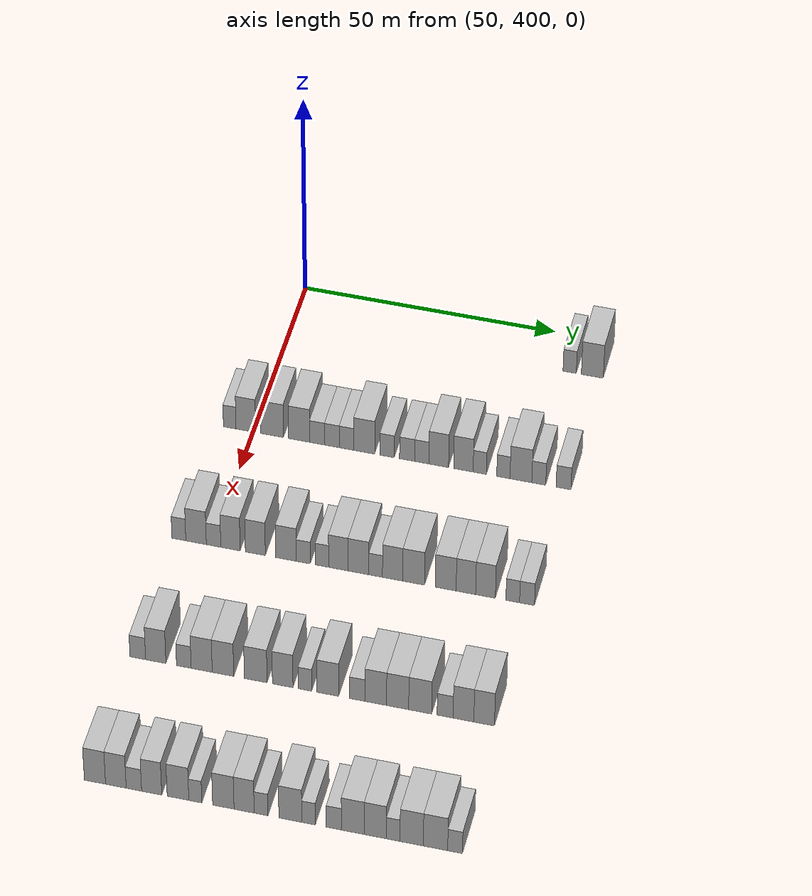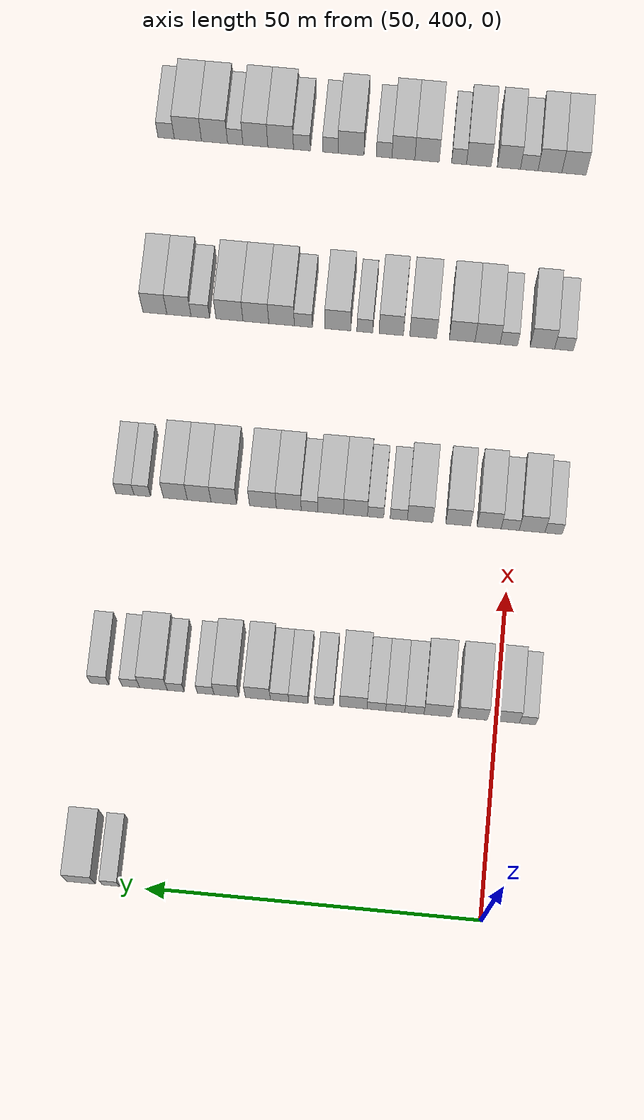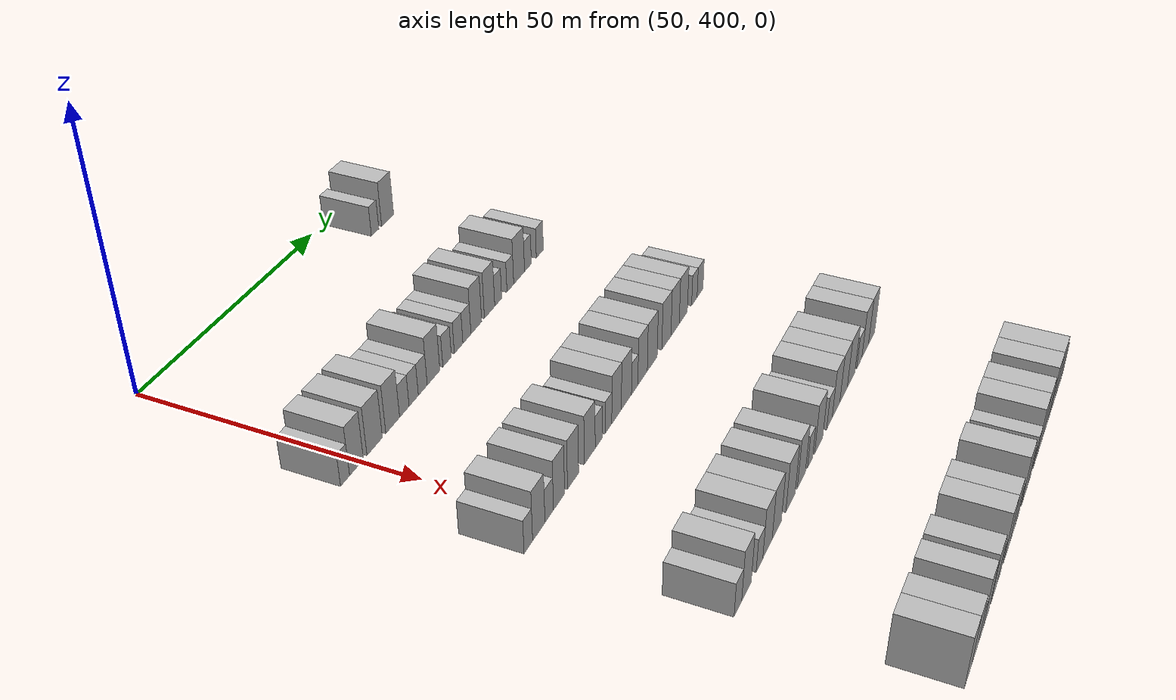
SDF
<sdf version="1.6">
 <world name="default">
  <model name="building_442">
   <static>1</static>
   <pose>55.0000 455.1010 0 0.000000 0.000000 0.000000</pose>
   <link name="link">
    <pose>0 0 3.00 0 0 0</pose>
    <collision name="collision"><geometry><box><size>10.0000 2.6158 6.0000</size></box></geometry></collision>
    <visual name="visual">
     <cast_shadows>0</cast_shadows>
     <geometry><box><size>10.0000 2.6158 6.0000</size></box></geometry>
     <material>
      <script>
       <uri>model://HANNAS_wall/materials/scripts</uri>
       <uri>model://HANNAS_wall/materials/textures</uri>
       <name>vrc/HANNAS_wall</name>
      </script>
     </material>
    </visual>
   </link>
  </model>
  <model name="building_443">
   <static>1</static>
   <pose>55.0000 459.5647 0 0.000000 0.000000 0.000000</pose>
   <link name="link">
    <pose>0 0 4.50 0 0 0</pose>
    <collision name="collision"><geometry><box><size>10.0000 4.3116 9.0000</size></box></geometry></collision>
    <visual name="visual">
     <cast_shadows>0</cast_shadows>
     <geometry><box><size>10.0000 4.3116 9.0000</size></box></geometry>
     <material>
      <script>
       <uri>model://HANNAS_wall/materials/scripts</uri>
       <uri>model://HANNAS_wall/materials/textures</uri>
       <name>vrc/HANNAS_wall</name>
      </script>
     </material>
    </visual>
   </link>
  </model>
  <model name="building_662">
   <static>1</static>
   <pose>85.0000 395.3619 0 0.000000 0.000000 0.000000</pose>
   <link name="link">
    <pose>0 0 3.00 0 0 0</pose>
    <collision name="collision"><geometry><box><size>10.0000 2.4877 6.0000</size></box></geometry></collision>
    <visual name="visual">
     <cast_shadows>0</cast_shadows>
     <geometry><box><size>10.0000 2.4877 6.0000</size></box></geometry>
     <material>
      <script>
       <uri>model://HANNAS_wall/materials/scripts</uri>
       <uri>model://HANNAS_wall/materials/textures</uri>
       <name>vrc/HANNAS_wall</name>
      </script>
     </material>
    </visual>
   </link>
  </model>
  <model name="building_663">
   <static>1</static>
   <pose>85.0000 398.5430 0 0.000000 0.000000 0.000000</pose>
   <link name="link">
    <pose>0 0 4.50 0 0 0</pose>
    <collision name="collision"><geometry><box><size>10.0000 3.8745 9.0000</size></box></geometry></collision>
    <visual name="visual">
     <cast_shadows>0</cast_shadows>
     <geometry><box><size>10.0000 3.8745 9.0000</size></box></geometry>
     <material>
      <script>
       <uri>model://HANNAS_wall/materials/scripts</uri>
       <uri>model://HANNAS_wall/materials/textures</uri>
       <name>vrc/HANNAS_wall</name>
      </script>
     </material>
    </visual>
   </link>
  </model>
  <model name="building_664">
   <static>1</static>
   <pose>85.0000 403.7124 0 0.000000 0.000000 0.000000</pose>
   <link name="link">
    <pose>0 0 4.50 0 0 0</pose>
    <collision name="collision"><geometry><box><size>10.0000 4.4644 9.0000</size></box></geometry></collision>
    <visual name="visual">
     <cast_shadows>0</cast_shadows>
     <geometry><box><size>10.0000 4.4644 9.0000</size></box></geometry>
     <material>
      <script>
       <uri>model://HANNAS_wall/materials/scripts</uri>
       <uri>model://HANNAS_wall/materials/textures</uri>
       <name>vrc/HANNAS_wall</name>
      </script>
     </material>
    </visual>
   </link>
  </model>
  <model name="building_665">
   <static>1</static>
   <pose>85.0000 409.0161 0 0.000000 0.000000 0.000000</pose>
   <link name="link">
    <pose>0 0 4.50 0 0 0</pose>
    <collision name="collision"><geometry><box><size>10.0000 4.1429 9.0000</size></box></geometry></collision>
    <visual name="visual">
     <cast_shadows>0</cast_shadows>
     <geometry><box><size>10.0000 4.1429 9.0000</size></box></geometry>
     <material>
      <script>
       <uri>model://HANNAS_wall/materials/scripts</uri>
       <uri>model://HANNAS_wall/materials/textures</uri>
       <name>vrc/HANNAS_wall</name>
      </script>
     </material>
    </visual>
   </link>
  </model>
  <model name="building_666">
   <static>1</static>
   <pose>85.0000 412.5430 0 0.000000 0.000000 0.000000</pose>
   <link name="link">
    <pose>0 0 3.00 0 0 0</pose>
    <collision name="collision"><geometry><box><size>10.0000 2.9109 6.0000</size></box></geometry></collision>
    <visual name="visual">
     <cast_shadows>0</cast_shadows>
     <geometry><box><size>10.0000 2.9109 6.0000</size></box></geometry>
     <material>
      <script>
       <uri>model://HANNAS_wall/materials/scripts</uri>
       <uri>model://HANNAS_wall/materials/textures</uri>
       <name>vrc/HANNAS_wall</name>
      </script>
     </material>
    </visual>
   </link>
  </model>
  <model name="building_667">
   <static>1</static>
   <pose>85.0000 415.4427 0 0.000000 0.000000 0.000000</pose>
   <link name="link">
    <pose>0 0 3.00 0 0 0</pose>
    <collision name="collision"><geometry><box><size>10.0000 2.8886 6.0000</size></box></geometry></collision>
    <visual name="visual">
     <cast_shadows>0</cast_shadows>
     <geometry><box><size>10.0000 2.8886 6.0000</size></box></geometry>
     <material>
      <script>
       <uri>model://HANNAS_wall/materials/scripts</uri>
       <uri>model://HANNAS_wall/materials/textures</uri>
       <name>vrc/HANNAS_wall</name>
      </script>
     </material>
    </visual>
   </link>
  </model>
  <model name="building_668">
   <static>1</static>
   <pose>85.0000 418.3026 0 0.000000 0.000000 0.000000</pose>
   <link name="link">
    <pose>0 0 3.00 0 0 0</pose>
    <collision name="collision"><geometry><box><size>10.0000 2.8311 6.0000</size></box></geometry></collision>
    <visual name="visual">
     <cast_shadows>0</cast_shadows>
     <geometry><box><size>10.0000 2.8311 6.0000</size></box></geometry>
     <material>
      <script>
       <uri>model://HANNAS_wall/materials/scripts</uri>
       <uri>model://HANNAS_wall/materials/textures</uri>
       <name>vrc/HANNAS_wall</name>
      </script>
     </material>
    </visual>
   </link>
  </model>
  <model name="building_669">
   <static>1</static>
   <pose>85.0000 421.7716 0 0.000000 0.000000 0.000000</pose>
   <link name="link">
    <pose>0 0 4.50 0 0 0</pose>
    <collision name="collision"><geometry><box><size>10.0000 4.1070 9.0000</size></box></geometry></collision>
    <visual name="visual">
     <cast_shadows>0</cast_shadows>
     <geometry><box><size>10.0000 4.1070 9.0000</size></box></geometry>
     <material>
      <script>
       <uri>model://HANNAS_wall/materials/scripts</uri>
       <uri>model://HANNAS_wall/materials/textures</uri>
       <name>vrc/HANNAS_wall</name>
      </script>
     </material>
    </visual>
   </link>
  </model>
  <model name="building_670">
   <static>1</static>
   <pose>85.0000 426.2476 0 0.000000 0.000000 0.000000</pose>
   <link name="link">
    <pose>0 0 3.00 0 0 0</pose>
    <collision name="collision"><geometry><box><size>10.0000 2.8450 6.0000</size></box></geometry></collision>
    <visual name="visual">
     <cast_shadows>0</cast_shadows>
     <geometry><box><size>10.0000 2.8450 6.0000</size></box></geometry>
     <material>
      <script>
       <uri>model://HANNAS_wall/materials/scripts</uri>
       <uri>model://HANNAS_wall/materials/textures</uri>
       <name>vrc/HANNAS_wall</name>
      </script>
     </material>
    </visual>
   </link>
  </model>
  <model name="building_671">
   <static>1</static>
   <pose>85.0000 430.1347 0 0.000000 0.000000 0.000000</pose>
   <link name="link">
    <pose>0 0 3.00 0 0 0</pose>
    <collision name="collision"><geometry><box><size>10.0000 2.9293 6.0000</size></box></geometry></collision>
    <visual name="visual">
     <cast_shadows>0</cast_shadows>
     <geometry><box><size>10.0000 2.9293 6.0000</size></box></geometry>
     <material>
      <script>
       <uri>model://HANNAS_wall/materials/scripts</uri>
       <uri>model://HANNAS_wall/materials/textures</uri>
       <name>vrc/HANNAS_wall</name>
      </script>
     </material>
    </visual>
   </link>
  </model>
  <model name="building_672">
   <static>1</static>
   <pose>85.0000 432.9992 0 0.000000 0.000000 0.000000</pose>
   <link name="link">
    <pose>0 0 3.00 0 0 0</pose>
    <collision name="collision"><geometry><box><size>10.0000 2.7996 6.0000</size></box></geometry></collision>
    <visual name="visual">
     <cast_shadows>0</cast_shadows>
     <geometry><box><size>10.0000 2.7996 6.0000</size></box></geometry>
     <material>
      <script>
       <uri>model://HANNAS_wall/materials/scripts</uri>
       <uri>model://HANNAS_wall/materials/textures</uri>
       <name>vrc/HANNAS_wall</name>
      </script>
     </material>
    </visual>
   </link>
  </model>
  <model name="building_673">
   <static>1</static>
   <pose>85.0000 436.3059 0 0.000000 0.000000 0.000000</pose>
   <link name="link">
    <pose>0 0 4.50 0 0 0</pose>
    <collision name="collision"><geometry><box><size>10.0000 3.8138 9.0000</size></box></geometry></collision>
    <visual name="visual">
     <cast_shadows>0</cast_shadows>
     <geometry><box><size>10.0000 3.8138 9.0000</size></box></geometry>
     <material>
      <script>
       <uri>model://HANNAS_wall/materials/scripts</uri>
       <uri>model://HANNAS_wall/materials/textures</uri>
       <name>vrc/HANNAS_wall</name>
      </script>
     </material>
    </visual>
   </link>
  </model>
  <model name="building_674">
   <static>1</static>
   <pose>85.0000 441.1035 0 0.000000 0.000000 0.000000</pose>
   <link name="link">
    <pose>0 0 4.50 0 0 0</pose>
    <collision name="collision"><geometry><box><size>10.0000 3.7814 9.0000</size></box></geometry></collision>
    <visual name="visual">
     <cast_shadows>0</cast_shadows>
     <geometry><box><size>10.0000 3.7814 9.0000</size></box></geometry>
     <material>
      <script>
       <uri>model://HANNAS_wall/materials/scripts</uri>
       <uri>model://HANNAS_wall/materials/textures</uri>
       <name>vrc/HANNAS_wall</name>
      </script>
     </material>
    </visual>
   </link>
  </model>
  <model name="building_675">
   <static>1</static>
   <pose>85.0000 444.2789 0 0.000000 0.000000 0.000000</pose>
   <link name="link">
    <pose>0 0 3.00 0 0 0</pose>
    <collision name="collision"><geometry><box><size>10.0000 2.5695 6.0000</size></box></geometry></collision>
    <visual name="visual">
     <cast_shadows>0</cast_shadows>
     <geometry><box><size>10.0000 2.5695 6.0000</size></box></geometry>
     <material>
      <script>
       <uri>model://HANNAS_wall/materials/scripts</uri>
       <uri>model://HANNAS_wall/materials/textures</uri>
       <name>vrc/HANNAS_wall</name>
      </script>
     </material>
    </visual>
   </link>
  </model>
  <model name="building_676">
   <static>1</static>
   <pose>85.0000 448.8478 0 0.000000 0.000000 0.000000</pose>
   <link name="link">
    <pose>0 0 3.00 0 0 0</pose>
    <collision name="collision"><geometry><box><size>10.0000 2.5683 6.0000</size></box></geometry></collision>
    <visual name="visual">
     <cast_shadows>0</cast_shadows>
     <geometry><box><size>10.0000 2.5683 6.0000</size></box></geometry>
     <material>
      <script>
       <uri>model://HANNAS_wall/materials/scripts</uri>
       <uri>model://HANNAS_wall/materials/textures</uri>
       <name>vrc/HANNAS_wall</name>
      </script>
     </material>
    </visual>
   </link>
  </model>
  <model name="building_677">
   <static>1</static>
   <pose>85.0000 452.2426 0 0.000000 0.000000 0.000000</pose>
   <link name="link">
    <pose>0 0 4.50 0 0 0</pose>
    <collision name="collision"><geometry><box><size>10.0000 4.2213 9.0000</size></box></geometry></collision>
    <visual name="visual">
     <cast_shadows>0</cast_shadows>
     <geometry><box><size>10.0000 4.2213 9.0000</size></box></geometry>
     <material>
      <script>
       <uri>model://HANNAS_wall/materials/scripts</uri>
       <uri>model://HANNAS_wall/materials/textures</uri>
       <name>vrc/HANNAS_wall</name>
      </script>
     </material>
    </visual>
   </link>
  </model>
  <model name="building_678">
   <static>1</static>
   <pose>85.0000 455.6998 0 0.000000 0.000000 0.000000</pose>
   <link name="link">
    <pose>0 0 3.00 0 0 0</pose>
    <collision name="collision"><geometry><box><size>10.0000 2.6931 6.0000</size></box></geometry></collision>
    <visual name="visual">
     <cast_shadows>0</cast_shadows>
     <geometry><box><size>10.0000 2.6931 6.0000</size></box></geometry>
     <material>
      <script>
       <uri>model://HANNAS_wall/materials/scripts</uri>
       <uri>model://HANNAS_wall/materials/textures</uri>
       <name>vrc/HANNAS_wall</name>
      </script>
     </material>
    </visual>
   </link>
  </model>
  <model name="building_679">
   <static>1</static>
   <pose>85.0000 460.4785 0 0.000000 0.000000 0.000000</pose>
   <link name="link">
    <pose>0 0 3.00 0 0 0</pose>
    <collision name="collision"><geometry><box><size>10.0000 2.8643 6.0000</size></box></geometry></collision>
    <visual name="visual">
     <cast_shadows>0</cast_shadows>
     <geometry><box><size>10.0000 2.8643 6.0000</size></box></geometry>
     <material>
      <script>
       <uri>model://HANNAS_wall/materials/scripts</uri>
       <uri>model://HANNAS_wall/materials/textures</uri>
       <name>vrc/HANNAS_wall</name>
      </script>
     </material>
    </visual>
   </link>
  </model>
  <model name="building_889">
   <static>1</static>
   <pose>115.0000 393.5553 0 0.000000 0.000000 0.000000</pose>
   <link name="link">
    <pose>0 0 3.00 0 0 0</pose>
    <collision name="collision"><geometry><box><size>10.0000 2.6871 6.0000</size></box></geometry></collision>
    <visual name="visual">
     <cast_shadows>0</cast_shadows>
     <geometry><box><size>10.0000 2.6871 6.0000</size></box></geometry>
     <material>
      <script>
       <uri>model://HANNAS_wall/materials/scripts</uri>
       <uri>model://HANNAS_wall/materials/textures</uri>
       <name>vrc/HANNAS_wall</name>
      </script>
     </material>
    </visual>
   </link>
  </model>
  <model name="building_890">
   <static>1</static>
   <pose>115.0000 396.8811 0 0.000000 0.000000 0.000000</pose>
   <link name="link">
    <pose>0 0 4.50 0 0 0</pose>
    <collision name="collision"><geometry><box><size>10.0000 3.9644 9.0000</size></box></geometry></collision>
    <visual name="visual">
     <cast_shadows>0</cast_shadows>
     <geometry><box><size>10.0000 3.9644 9.0000</size></box></geometry>
     <material>
      <script>
       <uri>model://HANNAS_wall/materials/scripts</uri>
       <uri>model://HANNAS_wall/materials/textures</uri>
       <name>vrc/HANNAS_wall</name>
      </script>
     </material>
    </visual>
   </link>
  </model>
  <model name="building_891">
   <static>1</static>
   <pose>115.0000 400.2628 0 0.000000 0.000000 0.000000</pose>
   <link name="link">
    <pose>0 0 3.00 0 0 0</pose>
    <collision name="collision"><geometry><box><size>10.0000 2.7990 6.0000</size></box></geometry></collision>
    <visual name="visual">
     <cast_shadows>0</cast_shadows>
     <geometry><box><size>10.0000 2.7990 6.0000</size></box></geometry>
     <material>
      <script>
       <uri>model://HANNAS_wall/materials/scripts</uri>
       <uri>model://HANNAS_wall/materials/textures</uri>
       <name>vrc/HANNAS_wall</name>
      </script>
     </material>
    </visual>
   </link>
  </model>
  <model name="building_892">
   <static>1</static>
   <pose>115.0000 403.5293 0 0.000000 0.000000 0.000000</pose>
   <link name="link">
    <pose>0 0 4.50 0 0 0</pose>
    <collision name="collision"><geometry><box><size>10.0000 3.7340 9.0000</size></box></geometry></collision>
    <visual name="visual">
     <cast_shadows>0</cast_shadows>
     <geometry><box><size>10.0000 3.7340 9.0000</size></box></geometry>
     <material>
      <script>
       <uri>model://HANNAS_wall/materials/scripts</uri>
       <uri>model://HANNAS_wall/materials/textures</uri>
       <name>vrc/HANNAS_wall</name>
      </script>
     </material>
    </visual>
   </link>
  </model>
  <model name="building_893">
   <static>1</static>
   <pose>115.0000 408.3250 0 0.000000 0.000000 0.000000</pose>
   <link name="link">
    <pose>0 0 4.50 0 0 0</pose>
    <collision name="collision"><geometry><box><size>10.0000 3.8573 9.0000</size></box></geometry></collision>
    <visual name="visual">
     <cast_shadows>0</cast_shadows>
     <geometry><box><size>10.0000 3.8573 9.0000</size></box></geometry>
     <material>
      <script>
       <uri>model://HANNAS_wall/materials/scripts</uri>
       <uri>model://HANNAS_wall/materials/textures</uri>
       <name>vrc/HANNAS_wall</name>
      </script>
     </material>
    </visual>
   </link>
  </model>
  <model name="building_894">
   <static>1</static>
   <pose>115.0000 414.2347 0 0.000000 0.000000 0.000000</pose>
   <link name="link">
    <pose>0 0 4.50 0 0 0</pose>
    <collision name="collision"><geometry><box><size>10.0000 3.9620 9.0000</size></box></geometry></collision>
    <visual name="visual">
     <cast_shadows>0</cast_shadows>
     <geometry><box><size>10.0000 3.9620 9.0000</size></box></geometry>
     <material>
      <script>
       <uri>model://HANNAS_wall/materials/scripts</uri>
       <uri>model://HANNAS_wall/materials/textures</uri>
       <name>vrc/HANNAS_wall</name>
      </script>
     </material>
    </visual>
   </link>
  </model>
  <model name="building_895">
   <static>1</static>
   <pose>115.0000 417.5488 0 0.000000 0.000000 0.000000</pose>
   <link name="link">
    <pose>0 0 3.00 0 0 0</pose>
    <collision name="collision"><geometry><box><size>10.0000 2.6662 6.0000</size></box></geometry></collision>
    <visual name="visual">
     <cast_shadows>0</cast_shadows>
     <geometry><box><size>10.0000 2.6662 6.0000</size></box></geometry>
     <material>
      <script>
       <uri>model://HANNAS_wall/materials/scripts</uri>
       <uri>model://HANNAS_wall/materials/textures</uri>
       <name>vrc/HANNAS_wall</name>
      </script>
     </material>
    </visual>
   </link>
  </model>
  <model name="building_896">
   <static>1</static>
   <pose>115.0000 421.1404 0 0.000000 0.000000 0.000000</pose>
   <link name="link">
    <pose>0 0 3.00 0 0 0</pose>
    <collision name="collision"><geometry><box><size>10.0000 2.5169 6.0000</size></box></geometry></collision>
    <visual name="visual">
     <cast_shadows>0</cast_shadows>
     <geometry><box><size>10.0000 2.5169 6.0000</size></box></geometry>
     <material>
      <script>
       <uri>model://HANNAS_wall/materials/scripts</uri>
       <uri>model://HANNAS_wall/materials/textures</uri>
       <name>vrc/HANNAS_wall</name>
      </script>
     </material>
    </visual>
   </link>
  </model>
  <model name="building_897">
   <static>1</static>
   <pose>115.0000 424.2608 0 0.000000 0.000000 0.000000</pose>
   <link name="link">
    <pose>0 0 4.50 0 0 0</pose>
    <collision name="collision"><geometry><box><size>10.0000 3.7238 9.0000</size></box></geometry></collision>
    <visual name="visual">
     <cast_shadows>0</cast_shadows>
     <geometry><box><size>10.0000 3.7238 9.0000</size></box></geometry>
     <material>
      <script>
       <uri>model://HANNAS_wall/materials/scripts</uri>
       <uri>model://HANNAS_wall/materials/textures</uri>
       <name>vrc/HANNAS_wall</name>
      </script>
     </material>
    </visual>
   </link>
  </model>
  <model name="building_898">
   <static>1</static>
   <pose>115.0000 428.1082 0 0.000000 0.000000 0.000000</pose>
   <link name="link">
    <pose>0 0 4.50 0 0 0</pose>
    <collision name="collision"><geometry><box><size>10.0000 3.9711 9.0000</size></box></geometry></collision>
    <visual name="visual">
     <cast_shadows>0</cast_shadows>
     <geometry><box><size>10.0000 3.9711 9.0000</size></box></geometry>
     <material>
      <script>
       <uri>model://HANNAS_wall/materials/scripts</uri>
       <uri>model://HANNAS_wall/materials/textures</uri>
       <name>vrc/HANNAS_wall</name>
      </script>
     </material>
    </visual>
   </link>
  </model>
  <model name="building_899">
   <static>1</static>
   <pose>115.0000 431.3966 0 0.000000 0.000000 0.000000</pose>
   <link name="link">
    <pose>0 0 3.00 0 0 0</pose>
    <collision name="collision"><geometry><box><size>10.0000 2.6055 6.0000</size></box></geometry></collision>
    <visual name="visual">
     <cast_shadows>0</cast_shadows>
     <geometry><box><size>10.0000 2.6055 6.0000</size></box></geometry>
     <material>
      <script>
       <uri>model://HANNAS_wall/materials/scripts</uri>
       <uri>model://HANNAS_wall/materials/textures</uri>
       <name>vrc/HANNAS_wall</name>
      </script>
     </material>
    </visual>
   </link>
  </model>
  <model name="building_900">
   <static>1</static>
   <pose>115.0000 434.6352 0 0.000000 0.000000 0.000000</pose>
   <link name="link">
    <pose>0 0 4.50 0 0 0</pose>
    <collision name="collision"><geometry><box><size>10.0000 3.8718 9.0000</size></box></geometry></collision>
    <visual name="visual">
     <cast_shadows>0</cast_shadows>
     <geometry><box><size>10.0000 3.8718 9.0000</size></box></geometry>
     <material>
      <script>
       <uri>model://HANNAS_wall/materials/scripts</uri>
       <uri>model://HANNAS_wall/materials/textures</uri>
       <name>vrc/HANNAS_wall</name>
      </script>
     </material>
    </visual>
   </link>
  </model>
  <model name="building_901">
   <static>1</static>
   <pose>115.0000 438.6558 0 0.000000 0.000000 0.000000</pose>
   <link name="link">
    <pose>0 0 4.50 0 0 0</pose>
    <collision name="collision"><geometry><box><size>10.0000 4.1694 9.0000</size></box></geometry></collision>
    <visual name="visual">
     <cast_shadows>0</cast_shadows>
     <geometry><box><size>10.0000 4.1694 9.0000</size></box></geometry>
     <material>
      <script>
       <uri>model://HANNAS_wall/materials/scripts</uri>
       <uri>model://HANNAS_wall/materials/textures</uri>
       <name>vrc/HANNAS_wall</name>
      </script>
     </material>
    </visual>
   </link>
  </model>
  <model name="building_902">
   <static>1</static>
   <pose>115.0000 444.7355 0 0.000000 0.000000 0.000000</pose>
   <link name="link">
    <pose>0 0 4.50 0 0 0</pose>
    <collision name="collision"><geometry><box><size>10.0000 3.9899 9.0000</size></box></geometry></collision>
    <visual name="visual">
     <cast_shadows>0</cast_shadows>
     <geometry><box><size>10.0000 3.9899 9.0000</size></box></geometry>
     <material>
      <script>
       <uri>model://HANNAS_wall/materials/scripts</uri>
       <uri>model://HANNAS_wall/materials/textures</uri>
       <name>vrc/HANNAS_wall</name>
      </script>
     </material>
    </visual>
   </link>
  </model>
  <model name="building_903">
   <static>1</static>
   <pose>115.0000 448.5829 0 0.000000 0.000000 0.000000</pose>
   <link name="link">
    <pose>0 0 4.50 0 0 0</pose>
    <collision name="collision"><geometry><box><size>10.0000 3.7051 9.0000</size></box></geometry></collision>
    <visual name="visual">
     <cast_shadows>0</cast_shadows>
     <geometry><box><size>10.0000 3.7051 9.0000</size></box></geometry>
     <material>
      <script>
       <uri>model://HANNAS_wall/materials/scripts</uri>
       <uri>model://HANNAS_wall/materials/textures</uri>
       <name>vrc/HANNAS_wall</name>
      </script>
     </material>
    </visual>
   </link>
  </model>
  <model name="building_904">
   <static>1</static>
   <pose>115.0000 452.3053 0 0.000000 0.000000 0.000000</pose>
   <link name="link">
    <pose>0 0 4.50 0 0 0</pose>
    <collision name="collision"><geometry><box><size>10.0000 3.7396 9.0000</size></box></geometry></collision>
    <visual name="visual">
     <cast_shadows>0</cast_shadows>
     <geometry><box><size>10.0000 3.7396 9.0000</size></box></geometry>
     <material>
      <script>
       <uri>model://HANNAS_wall/materials/scripts</uri>
       <uri>model://HANNAS_wall/materials/textures</uri>
       <name>vrc/HANNAS_wall</name>
      </script>
     </material>
    </visual>
   </link>
  </model>
  <model name="building_905">
   <static>1</static>
   <pose>115.0000 457.4669 0 0.000000 0.000000 0.000000</pose>
   <link name="link">
    <pose>0 0 3.00 0 0 0</pose>
    <collision name="collision"><geometry><box><size>10.0000 2.5836 6.0000</size></box></geometry></collision>
    <visual name="visual">
     <cast_shadows>0</cast_shadows>
     <geometry><box><size>10.0000 2.5836 6.0000</size></box></geometry>
     <material>
      <script>
       <uri>model://HANNAS_wall/materials/scripts</uri>
       <uri>model://HANNAS_wall/materials/textures</uri>
       <name>vrc/HANNAS_wall</name>
      </script>
     </material>
    </visual>
   </link>
  </model>
  <model name="building_906">
   <static>1</static>
   <pose>115.0000 460.1709 0 0.000000 0.000000 0.000000</pose>
   <link name="link">
    <pose>0 0 3.00 0 0 0</pose>
    <collision name="collision"><geometry><box><size>10.0000 2.8246 6.0000</size></box></geometry></collision>
    <visual name="visual">
     <cast_shadows>0</cast_shadows>
     <geometry><box><size>10.0000 2.8246 6.0000</size></box></geometry>
     <material>
      <script>
       <uri>model://HANNAS_wall/materials/scripts</uri>
       <uri>model://HANNAS_wall/materials/textures</uri>
       <name>vrc/HANNAS_wall</name>
      </script>
     </material>
    </visual>
   </link>
  </model>
  <model name="building_1117">
   <static>1</static>
   <pose>145.0000 394.0140 0 0.000000 0.000000 0.000000</pose>
   <link name="link">
    <pose>0 0 3.00 0 0 0</pose>
    <collision name="collision"><geometry><box><size>10.0000 2.9625 6.0000</size></box></geometry></collision>
    <visual name="visual">
     <cast_shadows>0</cast_shadows>
     <geometry><box><size>10.0000 2.9625 6.0000</size></box></geometry>
     <material>
      <script>
       <uri>model://HANNAS_wall/materials/scripts</uri>
       <uri>model://HANNAS_wall/materials/textures</uri>
       <name>vrc/HANNAS_wall</name>
      </script>
     </material>
    </visual>
   </link>
  </model>
  <model name="building_1118">
   <static>1</static>
   <pose>145.0000 397.4213 0 0.000000 0.000000 0.000000</pose>
   <link name="link">
    <pose>0 0 4.50 0 0 0</pose>
    <collision name="collision"><geometry><box><size>10.0000 3.8521 9.0000</size></box></geometry></collision>
    <visual name="visual">
     <cast_shadows>0</cast_shadows>
     <geometry><box><size>10.0000 3.8521 9.0000</size></box></geometry>
     <material>
      <script>
       <uri>model://HANNAS_wall/materials/scripts</uri>
       <uri>model://HANNAS_wall/materials/textures</uri>
       <name>vrc/HANNAS_wall</name>
      </script>
     </material>
    </visual>
   </link>
  </model>
  <model name="building_1119">
   <static>1</static>
   <pose>145.0000 402.7347 0 0.000000 0.000000 0.000000</pose>
   <link name="link">
    <pose>0 0 3.00 0 0 0</pose>
    <collision name="collision"><geometry><box><size>10.0000 2.7748 6.0000</size></box></geometry></collision>
    <visual name="visual">
     <cast_shadows>0</cast_shadows>
     <geometry><box><size>10.0000 2.7748 6.0000</size></box></geometry>
     <material>
      <script>
       <uri>model://HANNAS_wall/materials/scripts</uri>
       <uri>model://HANNAS_wall/materials/textures</uri>
       <name>vrc/HANNAS_wall</name>
      </script>
     </material>
    </visual>
   </link>
  </model>
  <model name="building_1120">
   <static>1</static>
   <pose>145.0000 406.1104 0 0.000000 0.000000 0.000000</pose>
   <link name="link">
    <pose>0 0 4.50 0 0 0</pose>
    <collision name="collision"><geometry><box><size>10.0000 3.9766 9.0000</size></box></geometry></collision>
    <visual name="visual">
     <cast_shadows>0</cast_shadows>
     <geometry><box><size>10.0000 3.9766 9.0000</size></box></geometry>
     <material>
      <script>
       <uri>model://HANNAS_wall/materials/scripts</uri>
       <uri>model://HANNAS_wall/materials/textures</uri>
       <name>vrc/HANNAS_wall</name>
      </script>
     </material>
    </visual>
   </link>
  </model>
  <model name="building_1121">
   <static>1</static>
   <pose>145.0000 410.1350 0 0.000000 0.000000 0.000000</pose>
   <link name="link">
    <pose>0 0 4.50 0 0 0</pose>
    <collision name="collision"><geometry><box><size>10.0000 4.0726 9.0000</size></box></geometry></collision>
    <visual name="visual">
     <cast_shadows>0</cast_shadows>
     <geometry><box><size>10.0000 4.0726 9.0000</size></box></geometry>
     <material>
      <script>
       <uri>model://HANNAS_wall/materials/scripts</uri>
       <uri>model://HANNAS_wall/materials/textures</uri>
       <name>vrc/HANNAS_wall</name>
      </script>
     </material>
    </visual>
   </link>
  </model>
  <model name="building_1122">
   <static>1</static>
   <pose>145.0000 416.3068 0 0.000000 0.000000 0.000000</pose>
   <link name="link">
    <pose>0 0 4.50 0 0 0</pose>
    <collision name="collision"><geometry><box><size>10.0000 4.2710 9.0000</size></box></geometry></collision>
    <visual name="visual">
     <cast_shadows>0</cast_shadows>
     <geometry><box><size>10.0000 4.2710 9.0000</size></box></geometry>
     <material>
      <script>
       <uri>model://HANNAS_wall/materials/scripts</uri>
       <uri>model://HANNAS_wall/materials/textures</uri>
       <name>vrc/HANNAS_wall</name>
      </script>
     </material>
    </visual>
   </link>
  </model>
  <model name="building_1123">
   <static>1</static>
   <pose>145.0000 421.3751 0 0.000000 0.000000 0.000000</pose>
   <link name="link">
    <pose>0 0 4.50 0 0 0</pose>
    <collision name="collision"><geometry><box><size>10.0000 3.8656 9.0000</size></box></geometry></collision>
    <visual name="visual">
     <cast_shadows>0</cast_shadows>
     <geometry><box><size>10.0000 3.8656 9.0000</size></box></geometry>
     <material>
      <script>
       <uri>model://HANNAS_wall/materials/scripts</uri>
       <uri>model://HANNAS_wall/materials/textures</uri>
       <name>vrc/HANNAS_wall</name>
      </script>
     </material>
    </visual>
   </link>
  </model>
  <model name="building_1124">
   <static>1</static>
   <pose>145.0000 425.5668 0 0.000000 0.000000 0.000000</pose>
   <link name="link">
    <pose>0 0 3.00 0 0 0</pose>
    <collision name="collision"><geometry><box><size>10.0000 2.5178 6.0000</size></box></geometry></collision>
    <visual name="visual">
     <cast_shadows>0</cast_shadows>
     <geometry><box><size>10.0000 2.5178 6.0000</size></box></geometry>
     <material>
      <script>
       <uri>model://HANNAS_wall/materials/scripts</uri>
       <uri>model://HANNAS_wall/materials/textures</uri>
       <name>vrc/HANNAS_wall</name>
      </script>
     </material>
    </visual>
   </link>
  </model>
  <model name="building_1125">
   <static>1</static>
   <pose>145.0000 429.8598 0 0.000000 0.000000 0.000000</pose>
   <link name="link">
    <pose>0 0 4.50 0 0 0</pose>
    <collision name="collision"><geometry><box><size>10.0000 4.0683 9.0000</size></box></geometry></collision>
    <visual name="visual">
     <cast_shadows>0</cast_shadows>
     <geometry><box><size>10.0000 4.0683 9.0000</size></box></geometry>
     <material>
      <script>
       <uri>model://HANNAS_wall/materials/scripts</uri>
       <uri>model://HANNAS_wall/materials/textures</uri>
       <name>vrc/HANNAS_wall</name>
      </script>
     </material>
    </visual>
   </link>
  </model>
  <model name="building_1126">
   <static>1</static>
   <pose>145.0000 435.3322 0 0.000000 0.000000 0.000000</pose>
   <link name="link">
    <pose>0 0 3.00 0 0 0</pose>
    <collision name="collision"><geometry><box><size>10.0000 2.8766 6.0000</size></box></geometry></collision>
    <visual name="visual">
     <cast_shadows>0</cast_shadows>
     <geometry><box><size>10.0000 2.8766 6.0000</size></box></geometry>
     <material>
      <script>
       <uri>model://HANNAS_wall/materials/scripts</uri>
       <uri>model://HANNAS_wall/materials/textures</uri>
       <name>vrc/HANNAS_wall</name>
      </script>
     </material>
    </visual>
   </link>
  </model>
  <model name="building_1127">
   <static>1</static>
   <pose>145.0000 438.8032 0 0.000000 0.000000 0.000000</pose>
   <link name="link">
    <pose>0 0 4.50 0 0 0</pose>
    <collision name="collision"><geometry><box><size>10.0000 4.0653 9.0000</size></box></geometry></collision>
    <visual name="visual">
     <cast_shadows>0</cast_shadows>
     <geometry><box><size>10.0000 4.0653 9.0000</size></box></geometry>
     <material>
      <script>
       <uri>model://HANNAS_wall/materials/scripts</uri>
       <uri>model://HANNAS_wall/materials/textures</uri>
       <name>vrc/HANNAS_wall</name>
      </script>
     </material>
    </visual>
   </link>
  </model>
  <model name="building_1128">
   <static>1</static>
   <pose>145.0000 442.8926 0 0.000000 0.000000 0.000000</pose>
   <link name="link">
    <pose>0 0 4.50 0 0 0</pose>
    <collision name="collision"><geometry><box><size>10.0000 4.1135 9.0000</size></box></geometry></collision>
    <visual name="visual">
     <cast_shadows>0</cast_shadows>
     <geometry><box><size>10.0000 4.1135 9.0000</size></box></geometry>
     <material>
      <script>
       <uri>model://HANNAS_wall/materials/scripts</uri>
       <uri>model://HANNAS_wall/materials/textures</uri>
       <name>vrc/HANNAS_wall</name>
      </script>
     </material>
    </visual>
   </link>
  </model>
  <model name="building_1129">
   <static>1</static>
   <pose>145.0000 447.0960 0 0.000000 0.000000 0.000000</pose>
   <link name="link">
    <pose>0 0 4.50 0 0 0</pose>
    <collision name="collision"><geometry><box><size>10.0000 4.2934 9.0000</size></box></geometry></collision>
    <visual name="visual">
     <cast_shadows>0</cast_shadows>
     <geometry><box><size>10.0000 4.2934 9.0000</size></box></geometry>
     <material>
      <script>
       <uri>model://HANNAS_wall/materials/scripts</uri>
       <uri>model://HANNAS_wall/materials/textures</uri>
       <name>vrc/HANNAS_wall</name>
      </script>
     </material>
    </visual>
   </link>
  </model>
  <model name="building_1130">
   <static>1</static>
   <pose>145.0000 451.7294 0 0.000000 0.000000 0.000000</pose>
   <link name="link">
    <pose>0 0 3.00 0 0 0</pose>
    <collision name="collision"><geometry><box><size>10.0000 2.9734 6.0000</size></box></geometry></collision>
    <visual name="visual">
     <cast_shadows>0</cast_shadows>
     <geometry><box><size>10.0000 2.9734 6.0000</size></box></geometry>
     <material>
      <script>
       <uri>model://HANNAS_wall/materials/scripts</uri>
       <uri>model://HANNAS_wall/materials/textures</uri>
       <name>vrc/HANNAS_wall</name>
      </script>
     </material>
    </visual>
   </link>
  </model>
  <model name="building_1131">
   <static>1</static>
   <pose>145.0000 455.1418 0 0.000000 0.000000 0.000000</pose>
   <link name="link">
    <pose>0 0 4.50 0 0 0</pose>
    <collision name="collision"><geometry><box><size>10.0000 3.8513 9.0000</size></box></geometry></collision>
    <visual name="visual">
     <cast_shadows>0</cast_shadows>
     <geometry><box><size>10.0000 3.8513 9.0000</size></box></geometry>
     <material>
      <script>
       <uri>model://HANNAS_wall/materials/scripts</uri>
       <uri>model://HANNAS_wall/materials/textures</uri>
       <name>vrc/HANNAS_wall</name>
      </script>
     </material>
    </visual>
   </link>
  </model>
  <model name="building_1132">
   <static>1</static>
   <pose>145.0000 458.9779 0 0.000000 0.000000 0.000000</pose>
   <link name="link">
    <pose>0 0 4.50 0 0 0</pose>
    <collision name="collision"><geometry><box><size>10.0000 3.8211 9.0000</size></box></geometry></collision>
    <visual name="visual">
     <cast_shadows>0</cast_shadows>
     <geometry><box><size>10.0000 3.8211 9.0000</size></box></geometry>
     <material>
      <script>
       <uri>model://HANNAS_wall/materials/scripts</uri>
       <uri>model://HANNAS_wall/materials/textures</uri>
       <name>vrc/HANNAS_wall</name>
      </script>
     </material>
    </visual>
   </link>
  </model>
  <model name="building_1351">
   <static>1</static>
   <pose>175.0000 394.4830 0 0.000000 0.000000 0.000000</pose>
   <link name="link">
    <pose>0 0 4.50 0 0 0</pose>
    <collision name="collision"><geometry><box><size>10.0000 3.9246 9.0000</size></box></geometry></collision>
    <visual name="visual">
     <cast_shadows>0</cast_shadows>
     <geometry><box><size>10.0000 3.9246 9.0000</size></box></geometry>
     <material>
      <script>
       <uri>model://HANNAS_wall/materials/scripts</uri>
       <uri>model://HANNAS_wall/materials/textures</uri>
       <name>vrc/HANNAS_wall</name>
      </script>
     </material>
    </visual>
   </link>
  </model>
  <model name="building_1352">
   <static>1</static>
   <pose>175.0000 398.3618 0 0.000000 0.000000 0.000000</pose>
   <link name="link">
    <pose>0 0 4.50 0 0 0</pose>
    <collision name="collision"><geometry><box><size>10.0000 3.8331 9.0000</size></box></geometry></collision>
    <visual name="visual">
     <cast_shadows>0</cast_shadows>
     <geometry><box><size>10.0000 3.8331 9.0000</size></box></geometry>
     <material>
      <script>
       <uri>model://HANNAS_wall/materials/scripts</uri>
       <uri>model://HANNAS_wall/materials/textures</uri>
       <name>vrc/HANNAS_wall</name>
      </script>
     </material>
    </visual>
   </link>
  </model>
  <model name="building_1353">
   <static>1</static>
   <pose>175.0000 401.7076 0 0.000000 0.000000 0.000000</pose>
   <link name="link">
    <pose>0 0 3.00 0 0 0</pose>
    <collision name="collision"><geometry><box><size>10.0000 2.8585 6.0000</size></box></geometry></collision>
    <visual name="visual">
     <cast_shadows>0</cast_shadows>
     <geometry><box><size>10.0000 2.8585 6.0000</size></box></geometry>
     <material>
      <script>
       <uri>model://HANNAS_wall/materials/scripts</uri>
       <uri>model://HANNAS_wall/materials/textures</uri>
       <name>vrc/HANNAS_wall</name>
      </script>
     </material>
    </visual>
   </link>
  </model>
  <model name="building_1354">
   <static>1</static>
   <pose>175.0000 405.0054 0 0.000000 0.000000 0.000000</pose>
   <link name="link">
    <pose>0 0 4.50 0 0 0</pose>
    <collision name="collision"><geometry><box><size>10.0000 3.7371 9.0000</size></box></geometry></collision>
    <visual name="visual">
     <cast_shadows>0</cast_shadows>
     <geometry><box><size>10.0000 3.7371 9.0000</size></box></geometry>
     <material>
      <script>
       <uri>model://HANNAS_wall/materials/scripts</uri>
       <uri>model://HANNAS_wall/materials/textures</uri>
       <name>vrc/HANNAS_wall</name>
      </script>
     </material>
    </visual>
   </link>
  </model>
  <model name="building_1355">
   <static>1</static>
   <pose>175.0000 409.8739 0 0.000000 0.000000 0.000000</pose>
   <link name="link">
    <pose>0 0 4.50 0 0 0</pose>
    <collision name="collision"><geometry><box><size>10.0000 3.9999 9.0000</size></box></geometry></collision>
    <visual name="visual">
     <cast_shadows>0</cast_shadows>
     <geometry><box><size>10.0000 3.9999 9.0000</size></box></geometry>
     <material>
      <script>
       <uri>model://HANNAS_wall/materials/scripts</uri>
       <uri>model://HANNAS_wall/materials/textures</uri>
       <name>vrc/HANNAS_wall</name>
      </script>
     </material>
    </visual>
   </link>
  </model>
  <model name="building_1356">
   <static>1</static>
   <pose>175.0000 413.0755 0 0.000000 0.000000 0.000000</pose>
   <link name="link">
    <pose>0 0 3.00 0 0 0</pose>
    <collision name="collision"><geometry><box><size>10.0000 2.4033 6.0000</size></box></geometry></collision>
    <visual name="visual">
     <cast_shadows>0</cast_shadows>
     <geometry><box><size>10.0000 2.4033 6.0000</size></box></geometry>
     <material>
      <script>
       <uri>model://HANNAS_wall/materials/scripts</uri>
       <uri>model://HANNAS_wall/materials/textures</uri>
       <name>vrc/HANNAS_wall</name>
      </script>
     </material>
    </visual>
   </link>
  </model>
  <model name="building_1357">
   <static>1</static>
   <pose>175.0000 418.2468 0 0.000000 0.000000 0.000000</pose>
   <link name="link">
    <pose>0 0 4.50 0 0 0</pose>
    <collision name="collision"><geometry><box><size>10.0000 3.9393 9.0000</size></box></geometry></collision>
    <visual name="visual">
     <cast_shadows>0</cast_shadows>
     <geometry><box><size>10.0000 3.9393 9.0000</size></box></geometry>
     <material>
      <script>
       <uri>model://HANNAS_wall/materials/scripts</uri>
       <uri>model://HANNAS_wall/materials/textures</uri>
       <name>vrc/HANNAS_wall</name>
      </script>
     </material>
    </visual>
   </link>
  </model>
  <model name="building_1358">
   <static>1</static>
   <pose>175.0000 422.0729 0 0.000000 0.000000 0.000000</pose>
   <link name="link">
    <pose>0 0 4.50 0 0 0</pose>
    <collision name="collision"><geometry><box><size>10.0000 3.7129 9.0000</size></box></geometry></collision>
    <visual name="visual">
     <cast_shadows>0</cast_shadows>
     <geometry><box><size>10.0000 3.7129 9.0000</size></box></geometry>
     <material>
      <script>
       <uri>model://HANNAS_wall/materials/scripts</uri>
       <uri>model://HANNAS_wall/materials/textures</uri>
       <name>vrc/HANNAS_wall</name>
      </script>
     </material>
    </visual>
   </link>
  </model>
  <model name="building_1359">
   <static>1</static>
   <pose>175.0000 425.1967 0 0.000000 0.000000 0.000000</pose>
   <link name="link">
    <pose>0 0 3.00 0 0 0</pose>
    <collision name="collision"><geometry><box><size>10.0000 2.5346 6.0000</size></box></geometry></collision>
    <visual name="visual">
     <cast_shadows>0</cast_shadows>
     <geometry><box><size>10.0000 2.5346 6.0000</size></box></geometry>
     <material>
      <script>
       <uri>model://HANNAS_wall/materials/scripts</uri>
       <uri>model://HANNAS_wall/materials/textures</uri>
       <name>vrc/HANNAS_wall</name>
      </script>
     </material>
    </visual>
   </link>
  </model>
  <model name="building_1360">
   <static>1</static>
   <pose>175.0000 430.5680 0 0.000000 0.000000 0.000000</pose>
   <link name="link">
    <pose>0 0 4.50 0 0 0</pose>
    <collision name="collision"><geometry><box><size>10.0000 4.2080 9.0000</size></box></geometry></collision>
    <visual name="visual">
     <cast_shadows>0</cast_shadows>
     <geometry><box><size>10.0000 4.2080 9.0000</size></box></geometry>
     <material>
      <script>
       <uri>model://HANNAS_wall/materials/scripts</uri>
       <uri>model://HANNAS_wall/materials/textures</uri>
       <name>vrc/HANNAS_wall</name>
      </script>
     </material>
    </visual>
   </link>
  </model>
  <model name="building_1361">
   <static>1</static>
   <pose>175.0000 433.9154 0 0.000000 0.000000 0.000000</pose>
   <link name="link">
    <pose>0 0 3.00 0 0 0</pose>
    <collision name="collision"><geometry><box><size>10.0000 2.4868 6.0000</size></box></geometry></collision>
    <visual name="visual">
     <cast_shadows>0</cast_shadows>
     <geometry><box><size>10.0000 2.4868 6.0000</size></box></geometry>
     <material>
      <script>
       <uri>model://HANNAS_wall/materials/scripts</uri>
       <uri>model://HANNAS_wall/materials/textures</uri>
       <name>vrc/HANNAS_wall</name>
      </script>
     </material>
    </visual>
   </link>
  </model>
  <model name="building_1362">
   <static>1</static>
   <pose>175.0000 438.5375 0 0.000000 0.000000 0.000000</pose>
   <link name="link">
    <pose>0 0 3.00 0 0 0</pose>
    <collision name="collision"><geometry><box><size>10.0000 2.7575 6.0000</size></box></geometry></collision>
    <visual name="visual">
     <cast_shadows>0</cast_shadows>
     <geometry><box><size>10.0000 2.7575 6.0000</size></box></geometry>
     <material>
      <script>
       <uri>model://HANNAS_wall/materials/scripts</uri>
       <uri>model://HANNAS_wall/materials/textures</uri>
       <name>vrc/HANNAS_wall</name>
      </script>
     </material>
    </visual>
   </link>
  </model>
  <model name="building_1363">
   <static>1</static>
   <pose>175.0000 442.0015 0 0.000000 0.000000 0.000000</pose>
   <link name="link">
    <pose>0 0 4.50 0 0 0</pose>
    <collision name="collision"><geometry><box><size>10.0000 4.1704 9.0000</size></box></geometry></collision>
    <visual name="visual">
     <cast_shadows>0</cast_shadows>
     <geometry><box><size>10.0000 4.1704 9.0000</size></box></geometry>
     <material>
      <script>
       <uri>model://HANNAS_wall/materials/scripts</uri>
       <uri>model://HANNAS_wall/materials/textures</uri>
       <name>vrc/HANNAS_wall</name>
      </script>
     </material>
    </visual>
   </link>
  </model>
  <model name="building_1364">
   <static>1</static>
   <pose>175.0000 446.1140 0 0.000000 0.000000 0.000000</pose>
   <link name="link">
    <pose>0 0 4.50 0 0 0</pose>
    <collision name="collision"><geometry><box><size>10.0000 4.0546 9.0000</size></box></geometry></collision>
    <visual name="visual">
     <cast_shadows>0</cast_shadows>
     <geometry><box><size>10.0000 4.0546 9.0000</size></box></geometry>
     <material>
      <script>
       <uri>model://HANNAS_wall/materials/scripts</uri>
       <uri>model://HANNAS_wall/materials/textures</uri>
       <name>vrc/HANNAS_wall</name>
      </script>
     </material>
    </visual>
   </link>
  </model>
  <model name="building_1365">
   <static>1</static>
   <pose>175.0000 449.3831 0 0.000000 0.000000 0.000000</pose>
   <link name="link">
    <pose>0 0 3.00 0 0 0</pose>
    <collision name="collision"><geometry><box><size>10.0000 2.4836 6.0000</size></box></geometry></collision>
    <visual name="visual">
     <cast_shadows>0</cast_shadows>
     <geometry><box><size>10.0000 2.4836 6.0000</size></box></geometry>
     <material>
      <script>
       <uri>model://HANNAS_wall/materials/scripts</uri>
       <uri>model://HANNAS_wall/materials/textures</uri>
       <name>vrc/HANNAS_wall</name>
      </script>
     </material>
    </visual>
   </link>
  </model>
  <model name="building_1366">
   <static>1</static>
   <pose>175.0000 452.7478 0 0.000000 0.000000 0.000000</pose>
   <link name="link">
    <pose>0 0 4.50 0 0 0</pose>
    <collision name="collision"><geometry><box><size>10.0000 4.2457 9.0000</size></box></geometry></collision>
    <visual name="visual">
     <cast_shadows>0</cast_shadows>
     <geometry><box><size>10.0000 4.2457 9.0000</size></box></geometry>
     <material>
      <script>
       <uri>model://HANNAS_wall/materials/scripts</uri>
       <uri>model://HANNAS_wall/materials/textures</uri>
       <name>vrc/HANNAS_wall</name>
      </script>
     </material>
    </visual>
   </link>
  </model>
  <model name="building_1367">
   <static>1</static>
   <pose>175.0000 457.0798 0 0.000000 0.000000 0.000000</pose>
   <link name="link">
    <pose>0 0 4.50 0 0 0</pose>
    <collision name="collision"><geometry><box><size>10.0000 4.4183 9.0000</size></box></geometry></collision>
    <visual name="visual">
     <cast_shadows>0</cast_shadows>
     <geometry><box><size>10.0000 4.4183 9.0000</size></box></geometry>
     <material>
      <script>
       <uri>model://HANNAS_wall/materials/scripts</uri>
       <uri>model://HANNAS_wall/materials/textures</uri>
       <name>vrc/HANNAS_wall</name>
      </script>
     </material>
    </visual>
   </link>
  </model>
  <model name="building_1368">
   <static>1</static>
   <pose>175.0000 460.6282 0 0.000000 0.000000 0.000000</pose>
   <link name="link">
    <pose>0 0 3.00 0 0 0</pose>
    <collision name="collision"><geometry><box><size>10.0000 2.6784 6.0000</size></box></geometry></collision>
    <visual name="visual">
     <cast_shadows>0</cast_shadows>
     <geometry><box><size>10.0000 2.6784 6.0000</size></box></geometry>
     <material>
      <script>
       <uri>model://HANNAS_wall/materials/scripts</uri>
       <uri>model://HANNAS_wall/materials/textures</uri>
       <name>vrc/HANNAS_wall</name>
      </script>
     </material>
    </visual>
   </link>
  </model>
 </world>
</sdf>
